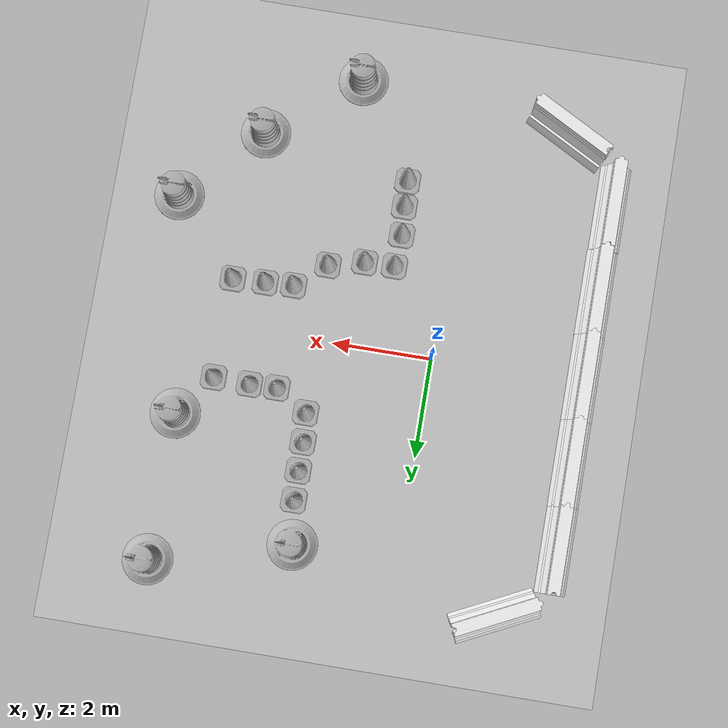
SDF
<sdf version="1.7">
 <world name="default">
  <light name="sun" type="directional">
   <pose>0 0 10 0 -0 0</pose>
   <diffuse>0.8 0.8 0.8 1</diffuse>
   <specular>0.2 0.2 0.2 1</specular>
   <attenuation>
    <range>1000</range>
    <constant>0.9</constant>
    <linear>0.01</linear>
    <quadratic>0.001</quadratic>
   </attenuation>
   <direction>-0.5 0.1 -0.9</direction>
   <spot><inner_angle>0</inner_angle><outer_angle>0</outer_angle><falloff>0</falloff></spot>
  </light>
  <model name="ground_plane">
   <static>1</static>
   <link name="link">
    <collision name="collision">
     <geometry><plane><normal>0 0 1</normal><size>100 100</size></plane></geometry>
     <surface><friction><ode><mu>100</mu><mu2>50</mu2></ode></friction></surface>
    </collision>
    <visual name="visual">
     <cast_shadows>0</cast_shadows>
     <geometry><plane><normal>0 0 1</normal><size>100 100</size></plane></geometry>
     <material>
      <script><uri>file://media/materials/scripts/gazebo.material</uri><name>Gazebo/Grey</name></script>
     </material>
    </visual>
   </link>
  </model>
  <gravity>0 0 -9.8</gravity>
  <magnetic_field>6e-06 2.3e-05 -4.2e-05</magnetic_field>
  <atmosphere type="adiabatic"/>
  <physics type="ode">
   <max_step_size>0.001</max_step_size>
   <real_time_factor>1</real_time_factor>
   <real_time_update_rate>1000</real_time_update_rate>
  </physics>
  <scene><ambient>0.4 0.4 0.4 1</ambient><background>0.7 0.7 0.7 1</background><shadows>1</shadows></scene>
  <spherical_coordinates>
   <surface_model>EARTH_WGS84</surface_model>
   <latitude_deg>0</latitude_deg>
   <longitude_deg>0</longitude_deg>
   <elevation>0</elevation>
   <heading_deg>0</heading_deg>
  </spherical_coordinates>
  <model name="drc_practice_white_jersey_barrier">
   <static>1</static>
   <link name="link">
    <visual name="visual">
     <geometry>
      <mesh><uri>model://drc_practice_white_jersey_barrier/meshes/jersey_barrier.dae</uri></mesh>
     </geometry>
    </visual>
    <collision name="collision">
     <geometry>
      <mesh><uri>model://drc_practice_white_jersey_barrier/meshes/jersey_barrier.dae</uri></mesh>
     </geometry>
    </collision>
   </link>
   <pose>-3.05493 -0.084633 0 0 -0 0</pose>
  </model>
  <model name="drc_practice_white_jersey_barrier_clone">
   <static>1</static>
   <link name="link">
    <visual name="visual">
     <geometry>
      <mesh><uri>model://drc_practice_white_jersey_barrier/meshes/jersey_barrier.dae</uri></mesh>
     </geometry>
    </visual>
    <collision name="collision">
     <geometry>
      <mesh><uri>model://drc_practice_white_jersey_barrier/meshes/jersey_barrier.dae</uri></mesh>
     </geometry>
    </collision>
   </link>
   <pose>-3.04676 1.65039 0 0 -0 0</pose>
  </model>
  <model name="drc_practice_white_jersey_barrier_clone_0">
   <static>1</static>
   <link name="link">
    <visual name="visual">
     <geometry>
      <mesh><uri>model://drc_practice_white_jersey_barrier/meshes/jersey_barrier.dae</uri></mesh>
     </geometry>
    </visual>
    <collision name="collision">
     <geometry>
      <mesh><uri>model://drc_practice_white_jersey_barrier/meshes/jersey_barrier.dae</uri></mesh>
     </geometry>
    </collision>
   </link>
   <pose>-3.05892 -1.81783 0 0 -0 0</pose>
  </model>
  <model name="drc_practice_white_jersey_barrier_clone_1">
   <static>1</static>
   <link name="link">
    <visual name="visual">
     <geometry>
      <mesh><uri>model://drc_practice_white_jersey_barrier/meshes/jersey_barrier.dae</uri></mesh>
     </geometry>
    </visual>
    <collision name="collision">
     <geometry>
      <mesh><uri>model://drc_practice_white_jersey_barrier/meshes/jersey_barrier.dae</uri></mesh>
     </geometry>
    </collision>
   </link>
   <pose>-3.04328 3.35892 0 0 -0 0</pose>
  </model>
  <model name="drc_practice_white_jersey_barrier_clone_2">
   <static>1</static>
   <link name="link">
    <visual name="visual">
     <geometry>
      <mesh><uri>model://drc_practice_white_jersey_barrier/meshes/jersey_barrier.dae</uri></mesh>
     </geometry>
    </visual>
    <collision name="collision">
     <geometry>
      <mesh><uri>model://drc_practice_white_jersey_barrier/meshes/jersey_barrier.dae</uri></mesh>
     </geometry>
    </collision>
   </link>
   <pose>-3.07924 -3.56309 0 0 -0 0</pose>
  </model>
  <model name="drc_practice_white_jersey_barrier_clone_3">
   <static>1</static>
   <link name="link">
    <visual name="visual">
     <geometry>
      <mesh><uri>model://drc_practice_white_jersey_barrier/meshes/jersey_barrier.dae</uri></mesh>
     </geometry>
    </visual>
    <collision name="collision">
     <geometry>
      <mesh><uri>model://drc_practice_white_jersey_barrier/meshes/jersey_barrier.dae</uri></mesh>
     </geometry>
    </collision>
   </link>
   <pose>-2.0269 4.81285 0 0 0 -1.10707</pose>
  </model>
  <model name="drc_practice_white_jersey_barrier_clone_4">
   <static>1</static>
   <link name="link">
    <visual name="visual">
     <geometry>
      <mesh><uri>model://drc_practice_white_jersey_barrier/meshes/jersey_barrier.dae</uri></mesh>
     </geometry>
    </visual>
    <collision name="collision">
     <geometry>
      <mesh><uri>model://drc_practice_white_jersey_barrier/meshes/jersey_barrier.dae</uri></mesh>
     </geometry>
    </collision>
   </link>
   <pose>-2.05493 -4.97771 0 0 -0 1.08227</pose>
  </model>
  <model name="Construction Cone">
   <link name="link">
    <collision name="collision">
     <geometry>
      <mesh><scale>10 10 10</scale><uri>model://construction_cone/meshes/construction_cone.dae</uri></mesh>
     </geometry>
    </collision>
    <visual name="visual">
     <geometry>
      <mesh><scale>10 10 10</scale><uri>model://construction_cone/meshes/construction_cone.dae</uri></mesh>
     </geometry>
    </visual>
    <inertial>
     <inertia><ixx>1</ixx><ixy>0</ixy><ixz>0</ixz><iyy>1</iyy><iyz>0</iyz><izz>1</izz></inertia>
     <mass>1</mass>
    </inertial>
   </link>
   <pose>2.96205 -1.03066 -0 0 -0 0</pose>
  </model>
  <model name="Construction Cone_clone">
   <link name="link">
    <collision name="collision">
     <geometry>
      <mesh><scale>10 10 10</scale><uri>model://construction_cone/meshes/construction_cone.dae</uri></mesh>
     </geometry>
    </collision>
    <visual name="visual">
     <geometry>
      <mesh><scale>10 10 10</scale><uri>model://construction_cone/meshes/construction_cone.dae</uri></mesh>
     </geometry>
    </visual>
    <inertial>
     <inertia><ixx>1</ixx><ixy>0</ixy><ixz>0</ixz><iyy>1</iyy><iyz>0</iyz><izz>1</izz></inertia>
     <mass>1</mass>
    </inertial>
   </link>
   <pose>2.94647 1.06773 -2e-06 -3e-06 -1e-06 -0</pose>
  </model>
  <model name="Construction Cone_clone_0">
   <link name="link">
    <collision name="collision">
     <geometry>
      <mesh><scale>10 10 10</scale><uri>model://construction_cone/meshes/construction_cone.dae</uri></mesh>
     </geometry>
    </collision>
    <visual name="visual">
     <geometry>
      <mesh><scale>10 10 10</scale><uri>model://construction_cone/meshes/construction_cone.dae</uri></mesh>
     </geometry>
    </visual>
    <inertial>
     <inertia><ixx>1</ixx><ixy>0</ixy><ixz>0</ixz><iyy>1</iyy><iyz>0</iyz><izz>1</izz></inertia>
     <mass>1</mass>
    </inertial>
   </link>
   <pose>3.50245 1.08358 -9e-06 1e-06 -1e-06 -0</pose>
  </model>
  <model name="Construction Cone_clone_1">
   <link name="link">
    <collision name="collision">
     <geometry>
      <mesh><scale>10 10 10</scale><uri>model://construction_cone/meshes/construction_cone.dae</uri></mesh>
     </geometry>
    </collision>
    <visual name="visual">
     <geometry>
      <mesh><scale>10 10 10</scale><uri>model://construction_cone/meshes/construction_cone.dae</uri></mesh>
     </geometry>
    </visual>
    <inertial>
     <inertia><ixx>1</ixx><ixy>0</ixy><ixz>0</ixz><iyy>1</iyy><iyz>0</iyz><izz>1</izz></inertia>
     <mass>1</mass>
    </inertial>
   </link>
   <pose>3.53983 -0.998393 -0 0 -0 0</pose>
  </model>
  <model name="Construction Cone_clone_2">
   <link name="link">
    <collision name="collision">
     <geometry>
      <mesh><scale>10 10 10</scale><uri>model://construction_cone/meshes/construction_cone.dae</uri></mesh>
     </geometry>
    </collision>
    <visual name="visual">
     <geometry>
      <mesh><scale>10 10 10</scale><uri>model://construction_cone/meshes/construction_cone.dae</uri></mesh>
     </geometry>
    </visual>
    <inertial>
     <inertia><ixx>1</ixx><ixy>0</ixy><ixz>0</ixz><iyy>1</iyy><iyz>0</iyz><izz>1</izz></inertia>
     <mass>1</mass>
    </inertial>
   </link>
   <pose>4.19886 -0.967404 -0 0 -0 0</pose>
  </model>
  <model name="Construction Cone_clone_3">
   <link name="link">
    <collision name="collision">
     <geometry>
      <mesh><scale>10 10 10</scale><uri>model://construction_cone/meshes/construction_cone.dae</uri></mesh>
     </geometry>
    </collision>
    <visual name="visual">
     <geometry>
      <mesh><scale>10 10 10</scale><uri>model://construction_cone/meshes/construction_cone.dae</uri></mesh>
     </geometry>
    </visual>
    <inertial>
     <inertia><ixx>1</ixx><ixy>0</ixy><ixz>0</ixz><iyy>1</iyy><iyz>0</iyz><izz>1</izz></inertia>
     <mass>1</mass>
    </inertial>
   </link>
   <pose>4.23164 1.06258 0 -0 -0 -0</pose>
  </model>
  <model name="Construction Cone_clone_4">
   <link name="link">
    <collision name="collision">
     <geometry>
      <mesh><scale>10 10 10</scale><uri>model://construction_cone/meshes/construction_cone.dae</uri></mesh>
     </geometry>
    </collision>
    <visual name="visual">
     <geometry>
      <mesh><scale>10 10 10</scale><uri>model://construction_cone/meshes/construction_cone.dae</uri></mesh>
     </geometry>
    </visual>
    <inertial>
     <inertia><ixx>1</ixx><ixy>0</ixy><ixz>0</ixz><iyy>1</iyy><iyz>0</iyz><izz>1</izz></inertia>
     <mass>1</mass>
    </inertial>
   </link>
   <pose>2.29357 1.46894 -1e-05 0 -0 0</pose>
  </model>
  <model name="Construction Cone_clone_5">
   <link name="link">
    <collision name="collision">
     <geometry>
      <mesh><scale>10 10 10</scale><uri>model://construction_cone/meshes/construction_cone.dae</uri></mesh>
     </geometry>
    </collision>
    <visual name="visual">
     <geometry>
      <mesh><scale>10 10 10</scale><uri>model://construction_cone/meshes/construction_cone.dae</uri></mesh>
     </geometry>
    </visual>
    <inertial>
     <inertia><ixx>1</ixx><ixy>0</ixy><ixz>0</ixz><iyy>1</iyy><iyz>0</iyz><izz>1</izz></inertia>
     <mass>1</mass>
    </inertial>
   </link>
   <pose>2.35203 -1.54991 -0 0 -0 0</pose>
  </model>
  <model name="Construction Cone_clone_6">
   <link name="link">
    <collision name="collision">
     <geometry>
      <mesh><scale>10 10 10</scale><uri>model://construction_cone/meshes/construction_cone.dae</uri></mesh>
     </geometry>
    </collision>
    <visual name="visual">
     <geometry>
      <mesh><scale>10 10 10</scale><uri>model://construction_cone/meshes/construction_cone.dae</uri></mesh>
     </geometry>
    </visual>
    <inertial>
     <inertia><ixx>1</ixx><ixy>0</ixy><ixz>0</ixz><iyy>1</iyy><iyz>0</iyz><izz>1</izz></inertia>
     <mass>1</mass>
    </inertial>
   </link>
   <pose>2.24916 2.05453 -0 0 -0 0</pose>
  </model>
  <model name="Construction Cone_clone_7">
   <link name="link">
    <collision name="collision">
     <geometry>
      <mesh><scale>10 10 10</scale><uri>model://construction_cone/meshes/construction_cone.dae</uri></mesh>
     </geometry>
    </collision>
    <visual name="visual">
     <geometry>
      <mesh><scale>10 10 10</scale><uri>model://construction_cone/meshes/construction_cone.dae</uri></mesh>
     </geometry>
    </visual>
    <inertial>
     <inertia><ixx>1</ixx><ixy>0</ixy><ixz>0</ixz><iyy>1</iyy><iyz>0</iyz><izz>1</izz></inertia>
     <mass>1</mass>
    </inertial>
   </link>
   <pose>2.24528 2.63061 -0 0 -0 0</pose>
  </model>
  <model name="Construction Cone_clone_8">
   <link name="link">
    <collision name="collision">
     <geometry>
      <mesh><scale>10 10 10</scale><uri>model://construction_cone/meshes/construction_cone.dae</uri></mesh>
     </geometry>
    </collision>
    <visual name="visual">
     <geometry>
      <mesh><scale>10 10 10</scale><uri>model://construction_cone/meshes/construction_cone.dae</uri></mesh>
     </geometry>
    </visual>
    <inertial>
     <inertia><ixx>1</ixx><ixy>0</ixy><ixz>0</ixz><iyy>1</iyy><iyz>0</iyz><izz>1</izz></inertia>
     <mass>1</mass>
    </inertial>
   </link>
   <pose>2.23303 3.21988 -0 0 -0 0</pose>
  </model>
  <model name="Construction Cone_clone_9">
   <link name="link">
    <collision name="collision">
     <geometry>
      <mesh><scale>10 10 10</scale><uri>model://construction_cone/meshes/construction_cone.dae</uri></mesh>
     </geometry>
    </collision>
    <visual name="visual">
     <geometry>
      <mesh><scale>10 10 10</scale><uri>model://construction_cone/meshes/construction_cone.dae</uri></mesh>
     </geometry>
    </visual>
    <inertial>
     <inertia><ixx>1</ixx><ixy>0</ixy><ixz>0</ixz><iyy>1</iyy><iyz>0</iyz><izz>1</izz></inertia>
     <mass>1</mass>
    </inertial>
   </link>
   <pose>1.6286 -1.73023 -9e-06 1e-06 -1e-06 -0</pose>
  </model>
  <model name="Construction Cone_clone_10">
   <link name="link">
    <collision name="collision">
     <geometry>
      <mesh><scale>10 10 10</scale><uri>model://construction_cone/meshes/construction_cone.dae</uri></mesh>
     </geometry>
    </collision>
    <visual name="visual">
     <geometry>
      <mesh><scale>10 10 10</scale><uri>model://construction_cone/meshes/construction_cone.dae</uri></mesh>
     </geometry>
    </visual>
    <inertial>
     <inertia><ixx>1</ixx><ixy>0</ixy><ixz>0</ixz><iyy>1</iyy><iyz>0</iyz><izz>1</izz></inertia>
     <mass>1</mass>
    </inertial>
   </link>
   <pose>1.02346 -1.74802 -9e-06 1e-06 -1e-06 -0</pose>
  </model>
  <model name="Construction Cone_clone_11">
   <link name="link">
    <collision name="collision">
     <geometry>
      <mesh><scale>10 10 10</scale><uri>model://construction_cone/meshes/construction_cone.dae</uri></mesh>
     </geometry>
    </collision>
    <visual name="visual">
     <geometry>
      <mesh><scale>10 10 10</scale><uri>model://construction_cone/meshes/construction_cone.dae</uri></mesh>
     </geometry>
    </visual>
    <inertial>
     <inertia><ixx>1</ixx><ixy>0</ixy><ixz>0</ixz><iyy>1</iyy><iyz>0</iyz><izz>1</izz></inertia>
     <mass>1</mass>
    </inertial>
   </link>
   <pose>0.981864 -2.39905 -3e-06 -3e-06 -1e-06 -0</pose>
  </model>
  <model name="Construction Cone_clone_12">
   <link name="link">
    <collision name="collision">
     <geometry>
      <mesh><scale>10 10 10</scale><uri>model://construction_cone/meshes/construction_cone.dae</uri></mesh>
     </geometry>
    </collision>
    <visual name="visual">
     <geometry>
      <mesh><scale>10 10 10</scale><uri>model://construction_cone/meshes/construction_cone.dae</uri></mesh>
     </geometry>
    </visual>
    <inertial>
     <inertia><ixx>1</ixx><ixy>0</ixy><ixz>0</ixz><iyy>1</iyy><iyz>0</iyz><izz>1</izz></inertia>
     <mass>1</mass>
    </inertial>
   </link>
   <pose>1.02236 -2.98671 -0 0 -1e-06 0</pose>
  </model>
  <model name="Construction Cone_clone_13">
   <link name="link">
    <collision name="collision">
     <geometry>
      <mesh><scale>10 10 10</scale><uri>model://construction_cone/meshes/construction_cone.dae</uri></mesh>
     </geometry>
    </collision>
    <visual name="visual">
     <geometry>
      <mesh><scale>10 10 10</scale><uri>model://construction_cone/meshes/construction_cone.dae</uri></mesh>
     </geometry>
    </visual>
    <inertial>
     <inertia><ixx>1</ixx><ixy>0</ixy><ixz>0</ixz><iyy>1</iyy><iyz>0</iyz><izz>1</izz></inertia>
     <mass>1</mass>
    </inertial>
   </link>
   <pose>1.0427 -3.5195 -1e-05 -1e-06 0 0</pose>
  </model>
  <model name="Construction Barrel">
   <link name="link">
    <inertial>
     <pose>0 0 0.4 0 -0 0</pose>
     <mass>500</mass>
     <inertia><ixx>51.2096</ixx><iyy>51.2096</iyy><izz>25</izz><ixy>0</ixy><ixz>0</ixz><iyz>0</iyz></inertia>
    </inertial>
    <collision name="collision">
     <geometry><mesh><uri>model://construction_barrel/meshes/construction_barrel.dae</uri></mesh></geometry>
    </collision>
    <visual name="visual">
     <geometry><mesh><uri>model://construction_barrel/meshes/construction_barrel.dae</uri></mesh></geometry>
    </visual>
   </link>
   <pose>2.26873 -5.43499 -1e-06 2e-06 -2e-06 -1.2e-05</pose>
  </model>
  <model name="Construction Barrel_clone">
   <link name="link">
    <inertial>
     <pose>0 0 0.4 0 -0 0</pose>
     <mass>500</mass>
     <inertia><ixx>51.2096</ixx><iyy>51.2096</iyy><izz>25</izz><ixy>0</ixy><ixz>0</ixz><iyz>0</iyz></inertia>
    </inertial>
    <collision name="collision">
     <geometry><mesh><uri>model://construction_barrel/meshes/construction_barrel.dae</uri></mesh></geometry>
    </collision>
    <visual name="visual">
     <geometry><mesh><uri>model://construction_barrel/meshes/construction_barrel.dae</uri></mesh></geometry>
    </visual>
   </link>
   <pose>4.05406 -4.03101 0 0 0 -1.3e-05</pose>
  </model>
  <model name="Construction Barrel_clone_0">
   <link name="link">
    <inertial>
     <pose>0 0 0.4 0 -0 0</pose>
     <mass>500</mass>
     <inertia><ixx>51.2096</ixx><iyy>51.2096</iyy><izz>25</izz><ixy>0</ixy><ixz>0</ixz><iyz>0</iyz></inertia>
    </inertial>
    <collision name="collision">
     <geometry><mesh><uri>model://construction_barrel/meshes/construction_barrel.dae</uri></mesh></geometry>
    </collision>
    <visual name="visual">
     <geometry><mesh><uri>model://construction_barrel/meshes/construction_barrel.dae</uri></mesh></geometry>
    </visual>
   </link>
   <pose>5.56906 -2.48311 -6e-06 0 -1.3e-05 -1e-05</pose>
  </model>
  <model name="Construction Barrel_clone_1">
   <link name="link">
    <inertial>
     <pose>0 0 0.4 0 -0 0</pose>
     <mass>500</mass>
     <inertia><ixx>51.2096</ixx><iyy>51.2096</iyy><izz>25</izz><ixy>0</ixy><ixz>0</ixz><iyz>0</iyz></inertia>
    </inertial>
    <collision name="collision">
     <geometry><mesh><uri>model://construction_barrel/meshes/construction_barrel.dae</uri></mesh></geometry>
    </collision>
    <visual name="visual">
     <geometry><mesh><uri>model://construction_barrel/meshes/construction_barrel.dae</uri></mesh></geometry>
    </visual>
   </link>
   <pose>2.11396 4.09544 0 0 0 -7e-06</pose>
  </model>
  <model name="Construction Barrel_clone_2">
   <link name="link">
    <inertial>
     <pose>0 0 0.4 0 -0 0</pose>
     <mass>500</mass>
     <inertia><ixx>51.2096</ixx><iyy>51.2096</iyy><izz>25</izz><ixy>0</ixy><ixz>0</ixz><iyz>0</iyz></inertia>
    </inertial>
    <collision name="collision">
     <geometry><mesh><uri>model://construction_barrel/meshes/construction_barrel.dae</uri></mesh></geometry>
    </collision>
    <visual name="visual">
     <geometry><mesh><uri>model://construction_barrel/meshes/construction_barrel.dae</uri></mesh></geometry>
    </visual>
   </link>
   <pose>4.86576 1.89914 -1e-06 1e-06 -2e-06 -5e-06</pose>
  </model>
  <model name="Construction Barrel_clone_3">
   <link name="link">
    <inertial>
     <pose>0 0 0.4 0 -0 0</pose>
     <mass>500</mass>
     <inertia><ixx>51.2096</ixx><iyy>51.2096</iyy><izz>25</izz><ixy>0</ixy><ixz>0</ixz><iyz>0</iyz></inertia>
    </inertial>
    <collision name="collision">
     <geometry><mesh><uri>model://construction_barrel/meshes/construction_barrel.dae</uri></mesh></geometry>
    </collision>
    <visual name="visual">
     <geometry><mesh><uri>model://construction_barrel/meshes/construction_barrel.dae</uri></mesh></geometry>
    </visual>
   </link>
   <pose>4.89353 4.84096 -3e-06 -6e-06 -5e-06 -3e-06</pose>
  </model>
 </world>
</sdf>
